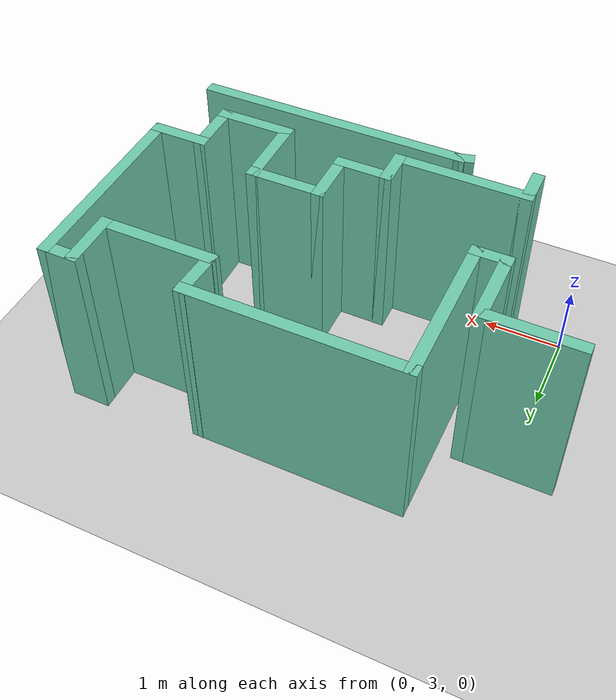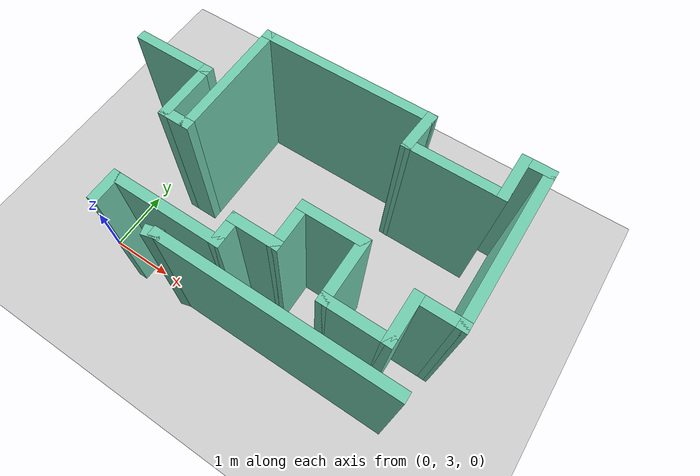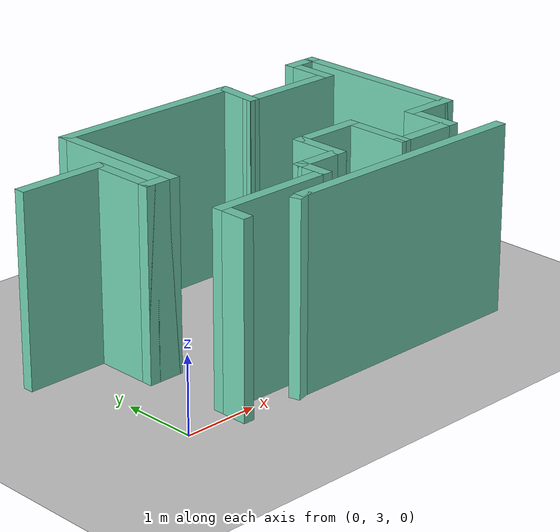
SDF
<sdf version="1.6">
 <world name="default">
  <model name="ground_plane">
   <static>1</static>
   <link name="link">
    <collision name="collision">
     <geometry><plane><normal>0 0 1</normal><size>100 100</size></plane></geometry>
     <surface><friction><ode><mu>100</mu><mu2>50</mu2></ode></friction></surface>
    </collision>
    <visual name="visual">
     <cast_shadows>0</cast_shadows>
     <geometry><plane><normal>0 0 1</normal><size>100 100</size></plane></geometry>
     <material>
      <script><uri>file://media/materials/scripts/gazebo.material</uri><name>Gazebo/Grey</name></script>
     </material>
    </visual>
   </link>
  </model>
  <model name="map_28">
   <link name="Wall_0">
    <pose>2.44979 5.13882 0 0 -0 3.14159</pose>
    <visual name="Wall_0_Visual">
     <pose>0 0 1.25 0 -0 0</pose>
     <geometry><box><size>2.75 0.15 2.5</size></box></geometry>
     <material>
      <script><uri>file://media/materials/scripts/gazebo.material</uri><name>Gazebo/Grey</name></script>
      <ambient>0.435294 0.796078 0.67451 1</ambient>
      <shader type="pixel"/>
     </material>
     <meta><layer>0</layer></meta>
    </visual>
    <collision name="Wall_0_Collision">
     <pose>0 0 1.25 0 -0 0</pose>
     <geometry><box><size>2.75 0.15 2.5</size></box></geometry>
     <surface>
      <friction>
       <ode><mu>1</mu><mu2>1</mu2><fdir1>0 0 0</fdir1><slip1>0</slip1><slip2>0</slip2></ode>
       <torsional>
        <coefficient>1</coefficient>
        <patch_radius>0</patch_radius>
        <surface_radius>0</surface_radius>
        <use_patch_radius>1</use_patch_radius>
        <ode><slip>0</slip></ode>
       </torsional>
      </friction>
      <bounce><restitution_coefficient>0</restitution_coefficient><threshold>1e+06</threshold></bounce>
      <contact>
       <collide_without_contact>0</collide_without_contact>
       <collide_without_contact_bitmask>1</collide_without_contact_bitmask>
       <collide_bitmask>1</collide_bitmask>
       <ode>
        <soft_cfm>0</soft_cfm>
        <soft_erp>0.2</soft_erp>
        <kp>1e+13</kp>
        <kd>1</kd>
        <max_vel>0.01</max_vel>
        <min_depth>0</min_depth>
       </ode>
       <bullet>
        <split_impulse>1</split_impulse>
        <split_impulse_penetration_threshold>-0.01</split_impulse_penetration_threshold>
        <soft_cfm>0</soft_cfm>
        <soft_erp>0.2</soft_erp>
        <kp>1e+13</kp>
        <kd>1</kd>
       </bullet>
      </contact>
     </surface>
    </collision>
   </link>
   <link name="Wall_1">
    <pose>1.14979 4.21382 0 0 0 -1.5708</pose>
    <visual name="Wall_1_Visual">
     <pose>0 0 1.25 0 -0 0</pose>
     <geometry><box><size>2 0.15 2.5</size></box></geometry>
     <material>
      <script><uri>file://media/materials/scripts/gazebo.material</uri><name>Gazebo/Grey</name></script>
      <ambient>0.435294 0.796078 0.67451 1</ambient>
      <shader type="pixel"/>
     </material>
     <meta><layer>0</layer></meta>
    </visual>
    <collision name="Wall_1_Collision">
     <pose>0 0 1.25 0 -0 0</pose>
     <geometry><box><size>2 0.15 2.5</size></box></geometry>
     <surface>
      <friction>
       <ode><mu>1</mu><mu2>1</mu2><fdir1>0 0 0</fdir1><slip1>0</slip1><slip2>0</slip2></ode>
       <torsional>
        <coefficient>1</coefficient>
        <patch_radius>0</patch_radius>
        <surface_radius>0</surface_radius>
        <use_patch_radius>1</use_patch_radius>
        <ode><slip>0</slip></ode>
       </torsional>
      </friction>
      <bounce><restitution_coefficient>0</restitution_coefficient><threshold>1e+06</threshold></bounce>
      <contact>
       <collide_without_contact>0</collide_without_contact>
       <collide_without_contact_bitmask>1</collide_without_contact_bitmask>
       <collide_bitmask>1</collide_bitmask>
       <ode>
        <soft_cfm>0</soft_cfm>
        <soft_erp>0.2</soft_erp>
        <kp>1e+13</kp>
        <kd>1</kd>
        <max_vel>0.01</max_vel>
        <min_depth>0</min_depth>
       </ode>
       <bullet>
        <split_impulse>1</split_impulse>
        <split_impulse_penetration_threshold>-0.01</split_impulse_penetration_threshold>
        <soft_cfm>0</soft_cfm>
        <soft_erp>0.2</soft_erp>
        <kp>1e+13</kp>
        <kd>1</kd>
       </bullet>
      </contact>
     </surface>
    </collision>
   </link>
   <link name="Wall_100">
    <pose>4.38795 2.27226 0 0 -0 0</pose>
    <visual name="Wall_100_Visual">
     <pose>0 0 1.25 0 -0 0</pose>
     <geometry><box><size>1 0.15 2.5</size></box></geometry>
     <material>
      <script><uri>file://media/materials/scripts/gazebo.material</uri><name>Gazebo/Grey</name></script>
      <ambient>0.435294 0.796078 0.67451 1</ambient>
      <shader type="pixel"/>
     </material>
     <meta><layer>0</layer></meta>
    </visual>
    <collision name="Wall_100_Collision">
     <pose>0 0 1.25 0 -0 0</pose>
     <geometry><box><size>1 0.15 2.5</size></box></geometry>
     <surface>
      <friction>
       <ode><mu>1</mu><mu2>1</mu2><fdir1>0 0 0</fdir1><slip1>0</slip1><slip2>0</slip2></ode>
       <torsional>
        <coefficient>1</coefficient>
        <patch_radius>0</patch_radius>
        <surface_radius>0</surface_radius>
        <use_patch_radius>1</use_patch_radius>
        <ode><slip>0</slip></ode>
       </torsional>
      </friction>
      <bounce><restitution_coefficient>0</restitution_coefficient><threshold>1e+06</threshold></bounce>
      <contact>
       <collide_without_contact>0</collide_without_contact>
       <collide_without_contact_bitmask>1</collide_without_contact_bitmask>
       <collide_bitmask>1</collide_bitmask>
       <ode>
        <soft_cfm>0</soft_cfm>
        <soft_erp>0.2</soft_erp>
        <kp>1e+13</kp>
        <kd>1</kd>
        <max_vel>0.01</max_vel>
        <min_depth>0</min_depth>
       </ode>
       <bullet>
        <split_impulse>1</split_impulse>
        <split_impulse_penetration_threshold>-0.01</split_impulse_penetration_threshold>
        <soft_cfm>0</soft_cfm>
        <soft_erp>0.2</soft_erp>
        <kp>1e+13</kp>
        <kd>1</kd>
       </bullet>
      </contact>
     </surface>
    </collision>
   </link>
   <link name="Wall_101">
    <pose>4.81295 2.57226 0 0 -0 1.5708</pose>
    <visual name="Wall_101_Visual">
     <pose>0 0 1.25 0 -0 0</pose>
     <geometry><box><size>0.75 0.15 2.5</size></box></geometry>
     <material>
      <script><uri>file://media/materials/scripts/gazebo.material</uri><name>Gazebo/Grey</name></script>
      <ambient>0.435294 0.796078 0.67451 1</ambient>
      <shader type="pixel"/>
     </material>
     <meta><layer>0</layer></meta>
    </visual>
    <collision name="Wall_101_Collision">
     <pose>0 0 1.25 0 -0 0</pose>
     <geometry><box><size>0.75 0.15 2.5</size></box></geometry>
     <surface>
      <friction>
       <ode><mu>1</mu><mu2>1</mu2><fdir1>0 0 0</fdir1><slip1>0</slip1><slip2>0</slip2></ode>
       <torsional>
        <coefficient>1</coefficient>
        <patch_radius>0</patch_radius>
        <surface_radius>0</surface_radius>
        <use_patch_radius>1</use_patch_radius>
        <ode><slip>0</slip></ode>
       </torsional>
      </friction>
      <bounce><restitution_coefficient>0</restitution_coefficient><threshold>1e+06</threshold></bounce>
      <contact>
       <collide_without_contact>0</collide_without_contact>
       <collide_without_contact_bitmask>1</collide_without_contact_bitmask>
       <collide_bitmask>1</collide_bitmask>
       <ode>
        <soft_cfm>0</soft_cfm>
        <soft_erp>0.2</soft_erp>
        <kp>1e+13</kp>
        <kd>1</kd>
        <max_vel>0.01</max_vel>
        <min_depth>0</min_depth>
       </ode>
       <bullet>
        <split_impulse>1</split_impulse>
        <split_impulse_penetration_threshold>-0.01</split_impulse_penetration_threshold>
        <soft_cfm>0</soft_cfm>
        <soft_erp>0.2</soft_erp>
        <kp>1e+13</kp>
        <kd>1</kd>
       </bullet>
      </contact>
     </surface>
    </collision>
   </link>
   <link name="Wall_102">
    <pose>5.11295 2.87226 0 0 -0 0</pose>
    <visual name="Wall_102_Visual">
     <pose>0 0 1.25 0 -0 0</pose>
     <geometry><box><size>0.75 0.15 2.5</size></box></geometry>
     <material>
      <script><uri>file://media/materials/scripts/gazebo.material</uri><name>Gazebo/Grey</name></script>
      <ambient>0.435294 0.796078 0.67451 1</ambient>
      <shader type="pixel"/>
     </material>
     <meta><layer>0</layer></meta>
    </visual>
    <collision name="Wall_102_Collision">
     <pose>0 0 1.25 0 -0 0</pose>
     <geometry><box><size>0.75 0.15 2.5</size></box></geometry>
     <surface>
      <friction>
       <ode><mu>1</mu><mu2>1</mu2><fdir1>0 0 0</fdir1><slip1>0</slip1><slip2>0</slip2></ode>
       <torsional>
        <coefficient>1</coefficient>
        <patch_radius>0</patch_radius>
        <surface_radius>0</surface_radius>
        <use_patch_radius>1</use_patch_radius>
        <ode><slip>0</slip></ode>
       </torsional>
      </friction>
      <bounce><restitution_coefficient>0</restitution_coefficient><threshold>1e+06</threshold></bounce>
      <contact>
       <collide_without_contact>0</collide_without_contact>
       <collide_without_contact_bitmask>1</collide_without_contact_bitmask>
       <collide_bitmask>1</collide_bitmask>
       <ode>
        <soft_cfm>0</soft_cfm>
        <soft_erp>0.2</soft_erp>
        <kp>1e+13</kp>
        <kd>1</kd>
        <max_vel>0.01</max_vel>
        <min_depth>0</min_depth>
       </ode>
       <bullet>
        <split_impulse>1</split_impulse>
        <split_impulse_penetration_threshold>-0.01</split_impulse_penetration_threshold>
        <soft_cfm>0</soft_cfm>
        <soft_erp>0.2</soft_erp>
        <kp>1e+13</kp>
        <kd>1</kd>
       </bullet>
      </contact>
     </surface>
    </collision>
   </link>
   <link name="Wall_103">
    <pose>5.41295 4.04726 0 0 -0 1.5708</pose>
    <visual name="Wall_103_Visual">
     <pose>0 0 1.25 0 -0 0</pose>
     <geometry><box><size>2.5 0.15 2.5</size></box></geometry>
     <material>
      <script><uri>file://media/materials/scripts/gazebo.material</uri><name>Gazebo/Grey</name></script>
      <ambient>0.435294 0.796078 0.67451 1</ambient>
      <shader type="pixel"/>
     </material>
     <meta><layer>0</layer></meta>
    </visual>
    <collision name="Wall_103_Collision">
     <pose>0 0 1.25 0 -0 0</pose>
     <geometry><box><size>2.5 0.15 2.5</size></box></geometry>
     <surface>
      <friction>
       <ode><mu>1</mu><mu2>1</mu2><fdir1>0 0 0</fdir1><slip1>0</slip1><slip2>0</slip2></ode>
       <torsional>
        <coefficient>1</coefficient>
        <patch_radius>0</patch_radius>
        <surface_radius>0</surface_radius>
        <use_patch_radius>1</use_patch_radius>
        <ode><slip>0</slip></ode>
       </torsional>
      </friction>
      <bounce><restitution_coefficient>0</restitution_coefficient><threshold>1e+06</threshold></bounce>
      <contact>
       <collide_without_contact>0</collide_without_contact>
       <collide_without_contact_bitmask>1</collide_without_contact_bitmask>
       <collide_bitmask>1</collide_bitmask>
       <ode>
        <soft_cfm>0</soft_cfm>
        <soft_erp>0.2</soft_erp>
        <kp>1e+13</kp>
        <kd>1</kd>
        <max_vel>0.01</max_vel>
        <min_depth>0</min_depth>
       </ode>
       <bullet>
        <split_impulse>1</split_impulse>
        <split_impulse_penetration_threshold>-0.01</split_impulse_penetration_threshold>
        <soft_cfm>0</soft_cfm>
        <soft_erp>0.2</soft_erp>
        <kp>1e+13</kp>
        <kd>1</kd>
       </bullet>
      </contact>
     </surface>
    </collision>
   </link>
   <link name="Wall_104">
    <pose>5.23795 5.22226 0 0 -0 3.14159</pose>
    <visual name="Wall_104_Visual">
     <pose>0 0 1.25 0 -0 0</pose>
     <geometry><box><size>0.5 0.15 2.5</size></box></geometry>
     <material>
      <script><uri>file://media/materials/scripts/gazebo.material</uri><name>Gazebo/Grey</name></script>
      <ambient>0.435294 0.796078 0.67451 1</ambient>
      <shader type="pixel"/>
     </material>
     <meta><layer>0</layer></meta>
    </visual>
    <collision name="Wall_104_Collision">
     <pose>0 0 1.25 0 -0 0</pose>
     <geometry><box><size>0.5 0.15 2.5</size></box></geometry>
     <surface>
      <friction>
       <ode><mu>1</mu><mu2>1</mu2><fdir1>0 0 0</fdir1><slip1>0</slip1><slip2>0</slip2></ode>
       <torsional>
        <coefficient>1</coefficient>
        <patch_radius>0</patch_radius>
        <surface_radius>0</surface_radius>
        <use_patch_radius>1</use_patch_radius>
        <ode><slip>0</slip></ode>
       </torsional>
      </friction>
      <bounce><restitution_coefficient>0</restitution_coefficient><threshold>1e+06</threshold></bounce>
      <contact>
       <collide_without_contact>0</collide_without_contact>
       <collide_without_contact_bitmask>1</collide_without_contact_bitmask>
       <collide_bitmask>1</collide_bitmask>
       <ode>
        <soft_cfm>0</soft_cfm>
        <soft_erp>0.2</soft_erp>
        <kp>1e+13</kp>
        <kd>1</kd>
        <max_vel>0.01</max_vel>
        <min_depth>0</min_depth>
       </ode>
       <bullet>
        <split_impulse>1</split_impulse>
        <split_impulse_penetration_threshold>-0.01</split_impulse_penetration_threshold>
        <soft_cfm>0</soft_cfm>
        <soft_erp>0.2</soft_erp>
        <kp>1e+13</kp>
        <kd>1</kd>
       </bullet>
      </contact>
     </surface>
    </collision>
   </link>
   <link name="Wall_105">
    <pose>5.06295 4.92226 0 0 0 -1.5708</pose>
    <visual name="Wall_105_Visual">
     <pose>0 0 1.25 0 -0 0</pose>
     <geometry><box><size>0.75 0.15 2.5</size></box></geometry>
     <material>
      <script><uri>file://media/materials/scripts/gazebo.material</uri><name>Gazebo/Grey</name></script>
      <ambient>0.435294 0.796078 0.67451 1</ambient>
      <shader type="pixel"/>
     </material>
     <meta><layer>0</layer></meta>
    </visual>
    <collision name="Wall_105_Collision">
     <pose>0 0 1.25 0 -0 0</pose>
     <geometry><box><size>0.75 0.15 2.5</size></box></geometry>
     <surface>
      <friction>
       <ode><mu>1</mu><mu2>1</mu2><fdir1>0 0 0</fdir1><slip1>0</slip1><slip2>0</slip2></ode>
       <torsional>
        <coefficient>1</coefficient>
        <patch_radius>0</patch_radius>
        <surface_radius>0</surface_radius>
        <use_patch_radius>1</use_patch_radius>
        <ode><slip>0</slip></ode>
       </torsional>
      </friction>
      <bounce><restitution_coefficient>0</restitution_coefficient><threshold>1e+06</threshold></bounce>
      <contact>
       <collide_without_contact>0</collide_without_contact>
       <collide_without_contact_bitmask>1</collide_without_contact_bitmask>
       <collide_bitmask>1</collide_bitmask>
       <ode>
        <soft_cfm>0</soft_cfm>
        <soft_erp>0.2</soft_erp>
        <kp>1e+13</kp>
        <kd>1</kd>
        <max_vel>0.01</max_vel>
        <min_depth>0</min_depth>
       </ode>
       <bullet>
        <split_impulse>1</split_impulse>
        <split_impulse_penetration_threshold>-0.01</split_impulse_penetration_threshold>
        <soft_cfm>0</soft_cfm>
        <soft_erp>0.2</soft_erp>
        <kp>1e+13</kp>
        <kd>1</kd>
       </bullet>
      </contact>
     </surface>
    </collision>
   </link>
   <link name="Wall_108">
    <pose>4.38795 4.62226 0 0 -0 3.14159</pose>
    <visual name="Wall_108_Visual">
     <pose>0 0 1.25 0 -0 0</pose>
     <geometry><box><size>1.5 0.15 2.5</size></box></geometry>
     <material>
      <script><uri>file://media/materials/scripts/gazebo.material</uri><name>Gazebo/Grey</name></script>
      <ambient>0.435294 0.796078 0.67451 1</ambient>
      <shader type="pixel"/>
     </material>
     <meta><layer>0</layer></meta>
    </visual>
    <collision name="Wall_108_Collision">
     <pose>0 0 1.25 0 -0 0</pose>
     <geometry><box><size>1.5 0.15 2.5</size></box></geometry>
     <surface>
      <friction>
       <ode><mu>1</mu><mu2>1</mu2><fdir1>0 0 0</fdir1><slip1>0</slip1><slip2>0</slip2></ode>
       <torsional>
        <coefficient>1</coefficient>
        <patch_radius>0</patch_radius>
        <surface_radius>0</surface_radius>
        <use_patch_radius>1</use_patch_radius>
        <ode><slip>0</slip></ode>
       </torsional>
      </friction>
      <bounce><restitution_coefficient>0</restitution_coefficient><threshold>1e+06</threshold></bounce>
      <contact>
       <collide_without_contact>0</collide_without_contact>
       <collide_without_contact_bitmask>1</collide_without_contact_bitmask>
       <collide_bitmask>1</collide_bitmask>
       <ode>
        <soft_cfm>0</soft_cfm>
        <soft_erp>0.2</soft_erp>
        <kp>1e+13</kp>
        <kd>1</kd>
        <max_vel>0.01</max_vel>
        <min_depth>0</min_depth>
       </ode>
       <bullet>
        <split_impulse>1</split_impulse>
        <split_impulse_penetration_threshold>-0.01</split_impulse_penetration_threshold>
        <soft_cfm>0</soft_cfm>
        <soft_erp>0.2</soft_erp>
        <kp>1e+13</kp>
        <kd>1</kd>
       </bullet>
      </contact>
     </surface>
    </collision>
   </link>
   <link name="Wall_109">
    <pose>3.73137 4.88054 0 0 -0 1.4996</pose>
    <visual name="Wall_109_Visual">
     <pose>0 0 1.25 0 -0 0</pose>
     <geometry><box><size>0.667875 0.15 2.5</size></box></geometry>
     <material>
      <script><uri>file://media/materials/scripts/gazebo.material</uri><name>Gazebo/Grey</name></script>
      <ambient>0.435294 0.796078 0.67451 1</ambient>
      <shader type="pixel"/>
     </material>
     <meta><layer>0</layer></meta>
    </visual>
    <collision name="Wall_109_Collision">
     <pose>0 0 1.25 0 -0 0</pose>
     <geometry><box><size>0.667875 0.15 2.5</size></box></geometry>
     <surface>
      <friction>
       <ode><mu>1</mu><mu2>1</mu2><fdir1>0 0 0</fdir1><slip1>0</slip1><slip2>0</slip2></ode>
       <torsional>
        <coefficient>1</coefficient>
        <patch_radius>0</patch_radius>
        <surface_radius>0</surface_radius>
        <use_patch_radius>1</use_patch_radius>
        <ode><slip>0</slip></ode>
       </torsional>
      </friction>
      <bounce><restitution_coefficient>0</restitution_coefficient><threshold>1e+06</threshold></bounce>
      <contact>
       <collide_without_contact>0</collide_without_contact>
       <collide_without_contact_bitmask>1</collide_without_contact_bitmask>
       <collide_bitmask>1</collide_bitmask>
       <ode>
        <soft_cfm>0</soft_cfm>
        <soft_erp>0.2</soft_erp>
        <kp>1e+13</kp>
        <kd>1</kd>
        <max_vel>0.01</max_vel>
        <min_depth>0</min_depth>
       </ode>
       <bullet>
        <split_impulse>1</split_impulse>
        <split_impulse_penetration_threshold>-0.01</split_impulse_penetration_threshold>
        <soft_cfm>0</soft_cfm>
        <soft_erp>0.2</soft_erp>
        <kp>1e+13</kp>
        <kd>1</kd>
       </bullet>
      </contact>
     </surface>
    </collision>
   </link>
   <link name="Wall_2">
    <pose>0.974795 3.28882 0 0 -0 3.14159</pose>
    <visual name="Wall_2_Visual">
     <pose>0 0 1.25 0 -0 0</pose>
     <geometry><box><size>0.5 0.15 2.5</size></box></geometry>
     <material>
      <script><uri>file://media/materials/scripts/gazebo.material</uri><name>Gazebo/Grey</name></script>
      <ambient>0.435294 0.796078 0.67451 1</ambient>
      <shader type="pixel"/>
     </material>
     <meta><layer>0</layer></meta>
    </visual>
    <collision name="Wall_2_Collision">
     <pose>0 0 1.25 0 -0 0</pose>
     <geometry><box><size>0.5 0.15 2.5</size></box></geometry>
     <surface>
      <friction>
       <ode><mu>1</mu><mu2>1</mu2><fdir1>0 0 0</fdir1><slip1>0</slip1><slip2>0</slip2></ode>
       <torsional>
        <coefficient>1</coefficient>
        <patch_radius>0</patch_radius>
        <surface_radius>0</surface_radius>
        <use_patch_radius>1</use_patch_radius>
        <ode><slip>0</slip></ode>
       </torsional>
      </friction>
      <bounce><restitution_coefficient>0</restitution_coefficient><threshold>1e+06</threshold></bounce>
      <contact>
       <collide_without_contact>0</collide_without_contact>
       <collide_without_contact_bitmask>1</collide_without_contact_bitmask>
       <collide_bitmask>1</collide_bitmask>
       <ode>
        <soft_cfm>0</soft_cfm>
        <soft_erp>0.2</soft_erp>
        <kp>1e+13</kp>
        <kd>1</kd>
        <max_vel>0.01</max_vel>
        <min_depth>0</min_depth>
       </ode>
       <bullet>
        <split_impulse>1</split_impulse>
        <split_impulse_penetration_threshold>-0.01</split_impulse_penetration_threshold>
        <soft_cfm>0</soft_cfm>
        <soft_erp>0.2</soft_erp>
        <kp>1e+13</kp>
        <kd>1</kd>
       </bullet>
      </contact>
     </surface>
    </collision>
   </link>
   <link name="Wall_3">
    <pose>0.799795 3.71382 0 0 -0 1.5708</pose>
    <visual name="Wall_3_Visual">
     <pose>0 0 1.25 0 -0 0</pose>
     <geometry><box><size>1 0.15 2.5</size></box></geometry>
     <material>
      <script><uri>file://media/materials/scripts/gazebo.material</uri><name>Gazebo/Grey</name></script>
      <ambient>0.435294 0.796078 0.67451 1</ambient>
      <shader type="pixel"/>
     </material>
     <meta><layer>0</layer></meta>
    </visual>
    <collision name="Wall_3_Collision">
     <pose>0 0 1.25 0 -0 0</pose>
     <geometry><box><size>1 0.15 2.5</size></box></geometry>
     <surface>
      <friction>
       <ode><mu>1</mu><mu2>1</mu2><fdir1>0 0 0</fdir1><slip1>0</slip1><slip2>0</slip2></ode>
       <torsional>
        <coefficient>1</coefficient>
        <patch_radius>0</patch_radius>
        <surface_radius>0</surface_radius>
        <use_patch_radius>1</use_patch_radius>
        <ode><slip>0</slip></ode>
       </torsional>
      </friction>
      <bounce><restitution_coefficient>0</restitution_coefficient><threshold>1e+06</threshold></bounce>
      <contact>
       <collide_without_contact>0</collide_without_contact>
       <collide_without_contact_bitmask>1</collide_without_contact_bitmask>
       <collide_bitmask>1</collide_bitmask>
       <ode>
        <soft_cfm>0</soft_cfm>
        <soft_erp>0.2</soft_erp>
        <kp>1e+13</kp>
        <kd>1</kd>
        <max_vel>0.01</max_vel>
        <min_depth>0</min_depth>
       </ode>
       <bullet>
        <split_impulse>1</split_impulse>
        <split_impulse_penetration_threshold>-0.01</split_impulse_penetration_threshold>
        <soft_cfm>0</soft_cfm>
        <soft_erp>0.2</soft_erp>
        <kp>1e+13</kp>
        <kd>1</kd>
       </bullet>
      </contact>
     </surface>
    </collision>
   </link>
   <link name="Wall_4">
    <pose>0.249795 4.13882 0 0 -0 3.14159</pose>
    <visual name="Wall_4_Visual">
     <pose>0 0 1.25 0 -0 0</pose>
     <geometry><box><size>1.25 0.15 2.5</size></box></geometry>
     <material>
      <script><uri>file://media/materials/scripts/gazebo.material</uri><name>Gazebo/Grey</name></script>
      <ambient>0.435294 0.796078 0.67451 1</ambient>
      <shader type="pixel"/>
     </material>
     <meta><layer>0</layer></meta>
    </visual>
    <collision name="Wall_4_Collision">
     <pose>0 0 1.25 0 -0 0</pose>
     <geometry><box><size>1.25 0.15 2.5</size></box></geometry>
     <surface>
      <friction>
       <ode><mu>1</mu><mu2>1</mu2><fdir1>0 0 0</fdir1><slip1>0</slip1><slip2>0</slip2></ode>
       <torsional>
        <coefficient>1</coefficient>
        <patch_radius>0</patch_radius>
        <surface_radius>0</surface_radius>
        <use_patch_radius>1</use_patch_radius>
        <ode><slip>0</slip></ode>
       </torsional>
      </friction>
      <bounce><restitution_coefficient>0</restitution_coefficient><threshold>1e+06</threshold></bounce>
      <contact>
       <collide_without_contact>0</collide_without_contact>
       <collide_without_contact_bitmask>1</collide_without_contact_bitmask>
       <collide_bitmask>1</collide_bitmask>
       <ode>
        <soft_cfm>0</soft_cfm>
        <soft_erp>0.2</soft_erp>
        <kp>1e+13</kp>
        <kd>1</kd>
        <max_vel>0.01</max_vel>
        <min_depth>0</min_depth>
       </ode>
       <bullet>
        <split_impulse>1</split_impulse>
        <split_impulse_penetration_threshold>-0.01</split_impulse_penetration_threshold>
        <soft_cfm>0</soft_cfm>
        <soft_erp>0.2</soft_erp>
        <kp>1e+13</kp>
        <kd>1</kd>
       </bullet>
      </contact>
     </surface>
    </collision>
   </link>
   <link name="Wall_79">
    <pose>3.53455 1.84814 0 0 -0 3.14159</pose>
    <visual name="Wall_79_Visual">
     <pose>0 0 1.25 0 -0 0</pose>
     <geometry><box><size>3.5 0.15 2.5</size></box></geometry>
     <material>
      <script><uri>file://media/materials/scripts/gazebo.material</uri><name>Gazebo/Grey</name></script>
      <ambient>0.435294 0.796078 0.67451 1</ambient>
      <shader type="pixel"/>
     </material>
     <meta><layer>0</layer></meta>
    </visual>
    <collision name="Wall_79_Collision">
     <pose>0 0 1.25 0 -0 0</pose>
     <geometry><box><size>3.5 0.15 2.5</size></box></geometry>
     <surface>
      <friction>
       <ode><mu>1</mu><mu2>1</mu2><fdir1>0 0 0</fdir1><slip1>0</slip1><slip2>0</slip2></ode>
       <torsional>
        <coefficient>1</coefficient>
        <patch_radius>0</patch_radius>
        <surface_radius>0</surface_radius>
        <use_patch_radius>1</use_patch_radius>
        <ode><slip>0</slip></ode>
       </torsional>
      </friction>
      <bounce><restitution_coefficient>0</restitution_coefficient><threshold>1e+06</threshold></bounce>
      <contact>
       <collide_without_contact>0</collide_without_contact>
       <collide_without_contact_bitmask>1</collide_without_contact_bitmask>
       <collide_bitmask>1</collide_bitmask>
       <ode>
        <soft_cfm>0</soft_cfm>
        <soft_erp>0.2</soft_erp>
        <kp>1e+13</kp>
        <kd>1</kd>
        <max_vel>0.01</max_vel>
        <min_depth>0</min_depth>
       </ode>
       <bullet>
        <split_impulse>1</split_impulse>
        <split_impulse_penetration_threshold>-0.01</split_impulse_penetration_threshold>
        <soft_cfm>0</soft_cfm>
        <soft_erp>0.2</soft_erp>
        <kp>1e+13</kp>
        <kd>1</kd>
       </bullet>
      </contact>
     </surface>
    </collision>
   </link>
   <link name="Wall_80">
    <pose>1.81125 1.8352 0 0 0 -2.87979</pose>
    <visual name="Wall_80_Visual">
     <pose>0 0 1.25 0 -0 0</pose>
     <geometry><box><size>0.25 0.15 2.5</size></box></geometry>
     <material>
      <script><uri>file://media/materials/scripts/gazebo.material</uri><name>Gazebo/Grey</name></script>
      <ambient>0.435294 0.796078 0.67451 1</ambient>
      <shader type="pixel"/>
     </material>
     <meta><layer>0</layer></meta>
    </visual>
    <collision name="Wall_80_Collision">
     <pose>0 0 1.25 0 -0 0</pose>
     <geometry><box><size>0.25 0.15 2.5</size></box></geometry>
     <surface>
      <friction>
       <ode><mu>1</mu><mu2>1</mu2><fdir1>0 0 0</fdir1><slip1>0</slip1><slip2>0</slip2></ode>
       <torsional>
        <coefficient>1</coefficient>
        <patch_radius>0</patch_radius>
        <surface_radius>0</surface_radius>
        <use_patch_radius>1</use_patch_radius>
        <ode><slip>0</slip></ode>
       </torsional>
      </friction>
      <bounce><restitution_coefficient>0</restitution_coefficient><threshold>1e+06</threshold></bounce>
      <contact>
       <collide_without_contact>0</collide_without_contact>
       <collide_without_contact_bitmask>1</collide_without_contact_bitmask>
       <collide_bitmask>1</collide_bitmask>
       <ode>
        <soft_cfm>0</soft_cfm>
        <soft_erp>0.2</soft_erp>
        <kp>1e+13</kp>
        <kd>1</kd>
        <max_vel>0.01</max_vel>
        <min_depth>0</min_depth>
       </ode>
       <bullet>
        <split_impulse>1</split_impulse>
        <split_impulse_penetration_threshold>-0.01</split_impulse_penetration_threshold>
        <soft_cfm>0</soft_cfm>
        <soft_erp>0.2</soft_erp>
        <kp>1e+13</kp>
        <kd>1</kd>
       </bullet>
      </contact>
     </surface>
    </collision>
   </link>
   <link name="Wall_82">
    <pose>0.912952 1.99726 0 0 -0 1.5708</pose>
    <visual name="Wall_82_Visual">
     <pose>0 0 1.25 0 -0 0</pose>
     <geometry><box><size>0.5 0.15 2.5</size></box></geometry>
     <material>
      <script><uri>file://media/materials/scripts/gazebo.material</uri><name>Gazebo/Grey</name></script>
      <ambient>0.435294 0.796078 0.67451 1</ambient>
      <shader type="pixel"/>
     </material>
     <meta><layer>0</layer></meta>
    </visual>
    <collision name="Wall_82_Collision">
     <pose>0 0 1.25 0 -0 0</pose>
     <geometry><box><size>0.5 0.15 2.5</size></box></geometry>
     <surface>
      <friction>
       <ode><mu>1</mu><mu2>1</mu2><fdir1>0 0 0</fdir1><slip1>0</slip1><slip2>0</slip2></ode>
       <torsional>
        <coefficient>1</coefficient>
        <patch_radius>0</patch_radius>
        <surface_radius>0</surface_radius>
        <use_patch_radius>1</use_patch_radius>
        <ode><slip>0</slip></ode>
       </torsional>
      </friction>
      <bounce><restitution_coefficient>0</restitution_coefficient><threshold>1e+06</threshold></bounce>
      <contact>
       <collide_without_contact>0</collide_without_contact>
       <collide_without_contact_bitmask>1</collide_without_contact_bitmask>
       <collide_bitmask>1</collide_bitmask>
       <ode>
        <soft_cfm>0</soft_cfm>
        <soft_erp>0.2</soft_erp>
        <kp>1e+13</kp>
        <kd>1</kd>
        <max_vel>0.01</max_vel>
        <min_depth>0</min_depth>
       </ode>
       <bullet>
        <split_impulse>1</split_impulse>
        <split_impulse_penetration_threshold>-0.01</split_impulse_penetration_threshold>
        <soft_cfm>0</soft_cfm>
        <soft_erp>0.2</soft_erp>
        <kp>1e+13</kp>
        <kd>1</kd>
       </bullet>
      </contact>
     </surface>
    </collision>
   </link>
   <link name="Wall_92">
    <pose>1.71295 2.17226 0 0 -0 0</pose>
    <visual name="Wall_92_Visual">
     <pose>0 0 1.25 0 -0 0</pose>
     <geometry><box><size>1.75 0.15 2.5</size></box></geometry>
     <material>
      <script><uri>file://media/materials/scripts/gazebo.material</uri><name>Gazebo/Grey</name></script>
      <ambient>0.435294 0.796078 0.67451 1</ambient>
      <shader type="pixel"/>
     </material>
     <meta><layer>0</layer></meta>
    </visual>
    <collision name="Wall_92_Collision">
     <pose>0 0 1.25 0 -0 0</pose>
     <geometry><box><size>1.75 0.15 2.5</size></box></geometry>
     <surface>
      <friction>
       <ode><mu>1</mu><mu2>1</mu2><fdir1>0 0 0</fdir1><slip1>0</slip1><slip2>0</slip2></ode>
       <torsional>
        <coefficient>1</coefficient>
        <patch_radius>0</patch_radius>
        <surface_radius>0</surface_radius>
        <use_patch_radius>1</use_patch_radius>
        <ode><slip>0</slip></ode>
       </torsional>
      </friction>
      <bounce><restitution_coefficient>0</restitution_coefficient><threshold>1e+06</threshold></bounce>
      <contact>
       <collide_without_contact>0</collide_without_contact>
       <collide_without_contact_bitmask>1</collide_without_contact_bitmask>
       <collide_bitmask>1</collide_bitmask>
       <ode>
        <soft_cfm>0</soft_cfm>
        <soft_erp>0.2</soft_erp>
        <kp>1e+13</kp>
        <kd>1</kd>
        <max_vel>0.01</max_vel>
        <min_depth>0</min_depth>
       </ode>
       <bullet>
        <split_impulse>1</split_impulse>
        <split_impulse_penetration_threshold>-0.01</split_impulse_penetration_threshold>
        <soft_cfm>0</soft_cfm>
        <soft_erp>0.2</soft_erp>
        <kp>1e+13</kp>
        <kd>1</kd>
       </bullet>
      </contact>
     </surface>
    </collision>
   </link>
   <link name="Wall_93">
    <pose>2.51295 2.34726 0 0 -0 1.5708</pose>
    <visual name="Wall_93_Visual">
     <pose>0 0 1.25 0 -0 0</pose>
     <geometry><box><size>0.5 0.15 2.5</size></box></geometry>
     <material>
      <script><uri>file://media/materials/scripts/gazebo.material</uri><name>Gazebo/Grey</name></script>
      <ambient>0.435294 0.796078 0.67451 1</ambient>
      <shader type="pixel"/>
     </material>
     <meta><layer>0</layer></meta>
    </visual>
    <collision name="Wall_93_Collision">
     <pose>0 0 1.25 0 -0 0</pose>
     <geometry><box><size>0.5 0.15 2.5</size></box></geometry>
     <surface>
      <friction>
       <ode><mu>1</mu><mu2>1</mu2><fdir1>0 0 0</fdir1><slip1>0</slip1><slip2>0</slip2></ode>
       <torsional>
        <coefficient>1</coefficient>
        <patch_radius>0</patch_radius>
        <surface_radius>0</surface_radius>
        <use_patch_radius>1</use_patch_radius>
        <ode><slip>0</slip></ode>
       </torsional>
      </friction>
      <bounce><restitution_coefficient>0</restitution_coefficient><threshold>1e+06</threshold></bounce>
      <contact>
       <collide_without_contact>0</collide_without_contact>
       <collide_without_contact_bitmask>1</collide_without_contact_bitmask>
       <collide_bitmask>1</collide_bitmask>
       <ode>
        <soft_cfm>0</soft_cfm>
        <soft_erp>0.2</soft_erp>
        <kp>1e+13</kp>
        <kd>1</kd>
        <max_vel>0.01</max_vel>
        <min_depth>0</min_depth>
       </ode>
       <bullet>
        <split_impulse>1</split_impulse>
        <split_impulse_penetration_threshold>-0.01</split_impulse_penetration_threshold>
        <soft_cfm>0</soft_cfm>
        <soft_erp>0.2</soft_erp>
        <kp>1e+13</kp>
        <kd>1</kd>
       </bullet>
      </contact>
     </surface>
    </collision>
   </link>
   <link name="Wall_96">
    <pose>2.81295 2.52226 0 0 -0 0</pose>
    <visual name="Wall_96_Visual">
     <pose>0 0 1.25 0 -0 0</pose>
     <geometry><box><size>0.75 0.15 2.5</size></box></geometry>
     <material>
      <script><uri>file://media/materials/scripts/gazebo.material</uri><name>Gazebo/Grey</name></script>
      <ambient>0.435294 0.796078 0.67451 1</ambient>
      <shader type="pixel"/>
     </material>
     <meta><layer>0</layer></meta>
    </visual>
    <collision name="Wall_96_Collision">
     <pose>0 0 1.25 0 -0 0</pose>
     <geometry><box><size>0.75 0.15 2.5</size></box></geometry>
     <surface>
      <friction>
       <ode><mu>1</mu><mu2>1</mu2><fdir1>0 0 0</fdir1><slip1>0</slip1><slip2>0</slip2></ode>
       <torsional>
        <coefficient>1</coefficient>
        <patch_radius>0</patch_radius>
        <surface_radius>0</surface_radius>
        <use_patch_radius>1</use_patch_radius>
        <ode><slip>0</slip></ode>
       </torsional>
      </friction>
      <bounce><restitution_coefficient>0</restitution_coefficient><threshold>1e+06</threshold></bounce>
      <contact>
       <collide_without_contact>0</collide_without_contact>
       <collide_without_contact_bitmask>1</collide_without_contact_bitmask>
       <collide_bitmask>1</collide_bitmask>
       <ode>
        <soft_cfm>0</soft_cfm>
        <soft_erp>0.2</soft_erp>
        <kp>1e+13</kp>
        <kd>1</kd>
        <max_vel>0.01</max_vel>
        <min_depth>0</min_depth>
       </ode>
       <bullet>
        <split_impulse>1</split_impulse>
        <split_impulse_penetration_threshold>-0.01</split_impulse_penetration_threshold>
        <soft_cfm>0</soft_cfm>
        <soft_erp>0.2</soft_erp>
        <kp>1e+13</kp>
        <kd>1</kd>
       </bullet>
      </contact>
     </surface>
    </collision>
   </link>
   <link name="Wall_97">
    <pose>3.11295 2.82226 0 0 -0 1.5708</pose>
    <visual name="Wall_97_Visual">
     <pose>0 0 1.25 0 -0 0</pose>
     <geometry><box><size>0.75 0.15 2.5</size></box></geometry>
     <material>
      <script><uri>file://media/materials/scripts/gazebo.material</uri><name>Gazebo/Grey</name></script>
      <ambient>0.435294 0.796078 0.67451 1</ambient>
      <shader type="pixel"/>
     </material>
     <meta><layer>0</layer></meta>
    </visual>
    <collision name="Wall_97_Collision">
     <pose>0 0 1.25 0 -0 0</pose>
     <geometry><box><size>0.75 0.15 2.5</size></box></geometry>
     <surface>
      <friction>
       <ode><mu>1</mu><mu2>1</mu2><fdir1>0 0 0</fdir1><slip1>0</slip1><slip2>0</slip2></ode>
       <torsional>
        <coefficient>1</coefficient>
        <patch_radius>0</patch_radius>
        <surface_radius>0</surface_radius>
        <use_patch_radius>1</use_patch_radius>
        <ode><slip>0</slip></ode>
       </torsional>
      </friction>
      <bounce><restitution_coefficient>0</restitution_coefficient><threshold>1e+06</threshold></bounce>
      <contact>
       <collide_without_contact>0</collide_without_contact>
       <collide_without_contact_bitmask>1</collide_without_contact_bitmask>
       <collide_bitmask>1</collide_bitmask>
       <ode>
        <soft_cfm>0</soft_cfm>
        <soft_erp>0.2</soft_erp>
        <kp>1e+13</kp>
        <kd>1</kd>
        <max_vel>0.01</max_vel>
        <min_depth>0</min_depth>
       </ode>
       <bullet>
        <split_impulse>1</split_impulse>
        <split_impulse_penetration_threshold>-0.01</split_impulse_penetration_threshold>
        <soft_cfm>0</soft_cfm>
        <soft_erp>0.2</soft_erp>
        <kp>1e+13</kp>
        <kd>1</kd>
       </bullet>
      </contact>
     </surface>
    </collision>
   </link>
   <link name="Wall_98">
    <pose>3.53795 3.12226 0 0 -0 0</pose>
    <visual name="Wall_98_Visual">
     <pose>0 0 1.25 0 -0 0</pose>
     <geometry><box><size>1 0.15 2.5</size></box></geometry>
     <material>
      <script><uri>file://media/materials/scripts/gazebo.material</uri><name>Gazebo/Grey</name></script>
      <ambient>0.435294 0.796078 0.67451 1</ambient>
      <shader type="pixel"/>
     </material>
     <meta><layer>0</layer></meta>
    </visual>
    <collision name="Wall_98_Collision">
     <pose>0 0 1.25 0 -0 0</pose>
     <geometry><box><size>1 0.15 2.5</size></box></geometry>
     <surface>
      <friction>
       <ode><mu>1</mu><mu2>1</mu2><fdir1>0 0 0</fdir1><slip1>0</slip1><slip2>0</slip2></ode>
       <torsional>
        <coefficient>1</coefficient>
        <patch_radius>0</patch_radius>
        <surface_radius>0</surface_radius>
        <use_patch_radius>1</use_patch_radius>
        <ode><slip>0</slip></ode>
       </torsional>
      </friction>
      <bounce><restitution_coefficient>0</restitution_coefficient><threshold>1e+06</threshold></bounce>
      <contact>
       <collide_without_contact>0</collide_without_contact>
       <collide_without_contact_bitmask>1</collide_without_contact_bitmask>
       <collide_bitmask>1</collide_bitmask>
       <ode>
        <soft_cfm>0</soft_cfm>
        <soft_erp>0.2</soft_erp>
        <kp>1e+13</kp>
        <kd>1</kd>
        <max_vel>0.01</max_vel>
        <min_depth>0</min_depth>
       </ode>
       <bullet>
        <split_impulse>1</split_impulse>
        <split_impulse_penetration_threshold>-0.01</split_impulse_penetration_threshold>
        <soft_cfm>0</soft_cfm>
        <soft_erp>0.2</soft_erp>
        <kp>1e+13</kp>
        <kd>1</kd>
       </bullet>
      </contact>
     </surface>
    </collision>
   </link>
   <link name="Wall_99">
    <pose>3.96295 2.69726 0 0 0 -1.5708</pose>
    <visual name="Wall_99_Visual">
     <pose>0 0 1.25 0 -0 0</pose>
     <geometry><box><size>1 0.15 2.5</size></box></geometry>
     <material>
      <script><uri>file://media/materials/scripts/gazebo.material</uri><name>Gazebo/Grey</name></script>
      <ambient>0.435294 0.796078 0.67451 1</ambient>
      <shader type="pixel"/>
     </material>
     <meta><layer>0</layer></meta>
    </visual>
    <collision name="Wall_99_Collision">
     <pose>0 0 1.25 0 -0 0</pose>
     <geometry><box><size>1 0.15 2.5</size></box></geometry>
     <surface>
      <friction>
       <ode><mu>1</mu><mu2>1</mu2><fdir1>0 0 0</fdir1><slip1>0</slip1><slip2>0</slip2></ode>
       <torsional>
        <coefficient>1</coefficient>
        <patch_radius>0</patch_radius>
        <surface_radius>0</surface_radius>
        <use_patch_radius>1</use_patch_radius>
        <ode><slip>0</slip></ode>
       </torsional>
      </friction>
      <bounce><restitution_coefficient>0</restitution_coefficient><threshold>1e+06</threshold></bounce>
      <contact>
       <collide_without_contact>0</collide_without_contact>
       <collide_without_contact_bitmask>1</collide_without_contact_bitmask>
       <collide_bitmask>1</collide_bitmask>
       <ode>
        <soft_cfm>0</soft_cfm>
        <soft_erp>0.2</soft_erp>
        <kp>1e+13</kp>
        <kd>1</kd>
        <max_vel>0.01</max_vel>
        <min_depth>0</min_depth>
       </ode>
       <bullet>
        <split_impulse>1</split_impulse>
        <split_impulse_penetration_threshold>-0.01</split_impulse_penetration_threshold>
        <soft_cfm>0</soft_cfm>
        <soft_erp>0.2</soft_erp>
        <kp>1e+13</kp>
        <kd>1</kd>
       </bullet>
      </contact>
     </surface>
    </collision>
   </link>
   <static>1</static>
   <pose>-0.195887 1.02335 0 0 -0 0</pose>
  </model>
 </world>
</sdf>
